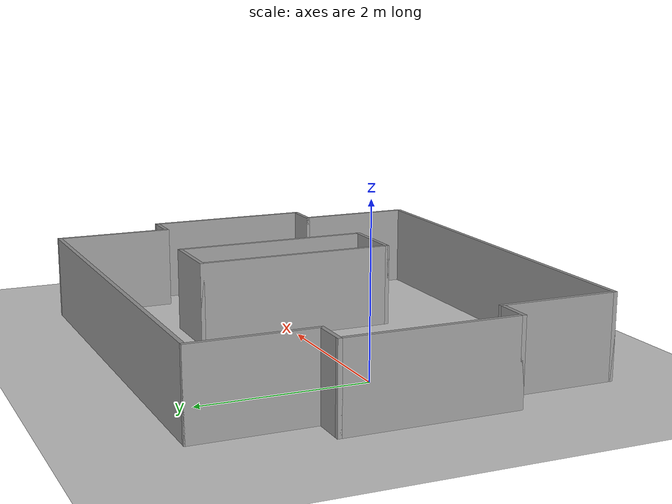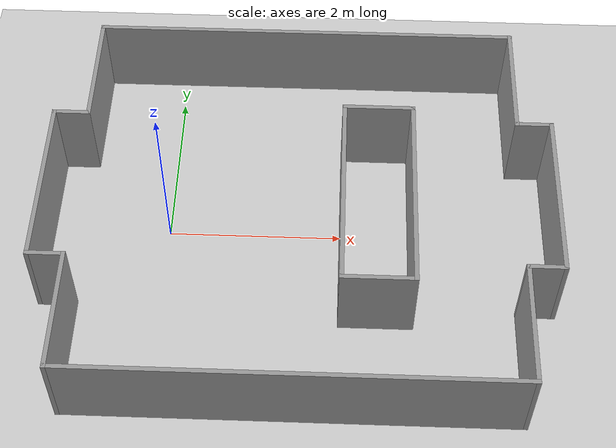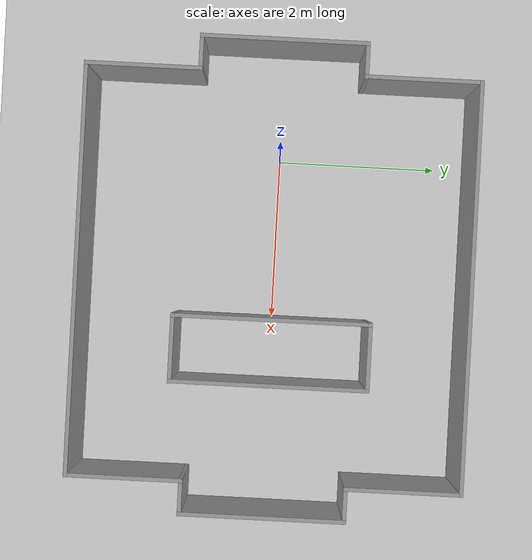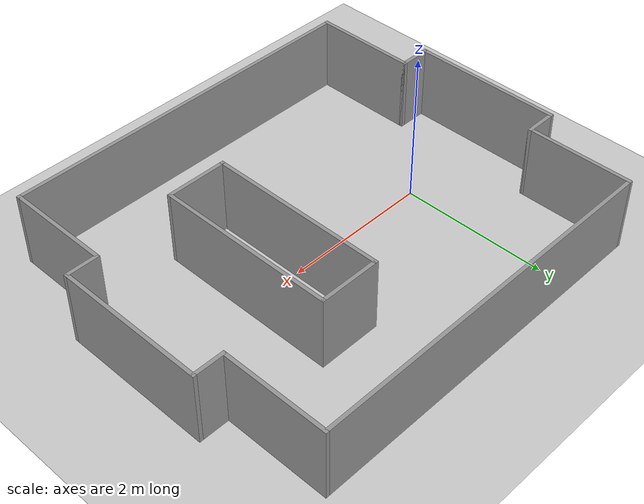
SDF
<sdf version="1.6">
 <world name="default">
  <light name="sun" type="directional">
   <pose>0 0 10 0 -0 0</pose>
   <diffuse>0.8 0.8 0.8 1</diffuse>
   <specular>0.2 0.2 0.2 1</specular>
   <attenuation>
    <range>1000</range>
    <constant>0.9</constant>
    <linear>0.01</linear>
    <quadratic>0.001</quadratic>
   </attenuation>
   <direction>-0.5 0.1 -0.9</direction>
  </light>
  <model name="ground_plane">
   <static>1</static>
   <link name="link">
    <collision name="collision">
     <geometry><plane><normal>0 0 1</normal><size>100 100</size></plane></geometry>
     <surface><friction><ode><mu>100</mu><mu2>50</mu2></ode></friction></surface>
    </collision>
    <visual name="visual">
     <cast_shadows>0</cast_shadows>
     <geometry><plane><normal>0 0 1</normal><size>100 100</size></plane></geometry>
     <material>
      <script><uri>file://media/materials/scripts/gazebo.material</uri><name>Gazebo/Grey</name></script>
     </material>
    </visual>
   </link>
  </model>
  <gravity>0 0 -9.8</gravity>
  <magnetic_field>6e-06 2.3e-05 -4.2e-05</magnetic_field>
  <atmosphere type="adiabatic"/>
  <physics name="default_physics" default="0" type="ode">
   <max_step_size>0.001</max_step_size>
   <real_time_factor>1</real_time_factor>
   <real_time_update_rate>1000</real_time_update_rate>
  </physics>
  <scene><ambient>0.4 0.4 0.4 1</ambient><background>0.7 0.7 0.7 1</background><shadows>1</shadows></scene>
  <spherical_coordinates>
   <surface_model>EARTH_WGS84</surface_model>
   <latitude_deg>0</latitude_deg>
   <longitude_deg>0</longitude_deg>
   <elevation>0</elevation>
   <heading_deg>0</heading_deg>
  </spherical_coordinates>
  <model name="rgarena2">
   <pose>1.51574 0.001618 0 0 0 -1.56927</pose>
   <link name="Wall_0">
    <collision name="Wall_0_Collision">
     <geometry><box><size>5.05 0.05 1</size></box></geometry>
     <pose>0 0 0.5 0 -0 0</pose>
    </collision>
    <visual name="Wall_0_Visual">
     <pose>0 0 0.5 0 -0 0</pose>
     <geometry><box><size>5.05 0.05 1</size></box></geometry>
     <material>
      <script><uri>file://media/materials/scripts/gazebo.material</uri><name>Gazebo/Grey</name></script>
      <ambient>1 1 1 1</ambient>
     </material>
     <meta><layer>0</layer></meta>
    </visual>
    <pose>-2.40022 0 0 0 -0 1.5708</pose>
   </link>
   <link name="Wall_14">
    <collision name="Wall_14_Collision">
     <geometry><box><size>1.45 0.05 1</size></box></geometry>
     <pose>0 0 0.5 0 -0 0</pose>
    </collision>
    <visual name="Wall_14_Visual">
     <pose>0 0 0.5 0 -0 0</pose>
     <geometry><box><size>1.45 0.05 1</size></box></geometry>
     <material>
      <script><uri>file://media/materials/scripts/gazebo.material</uri><name>Gazebo/Grey</name></script>
      <ambient>1 1 1 1</ambient>
     </material>
     <meta><layer>0</layer></meta>
    </visual>
    <pose>-1.70023 -2.5 0 0 -0 0</pose>
   </link>
   <link name="Wall_16">
    <collision name="Wall_16_Collision">
     <geometry><box><size>0.45 0.05 1</size></box></geometry>
     <pose>0 0 0.5 0 -0 0</pose>
    </collision>
    <visual name="Wall_16_Visual">
     <pose>0 0 0.5 0 -0 0</pose>
     <geometry><box><size>0.45 0.05 1</size></box></geometry>
     <material>
      <script><uri>file://media/materials/scripts/gazebo.material</uri><name>Gazebo/Grey</name></script>
      <ambient>1 1 1 1</ambient>
     </material>
     <meta><layer>0</layer></meta>
    </visual>
    <pose>-1.00022 -2.7 0 0 -0 -1.5708</pose>
   </link>
   <link name="Wall_18">
    <collision name="Wall_18_Collision">
     <geometry><box><size>2.065 0.05 1</size></box></geometry>
     <pose>0 0 0.5 0 -0 0</pose>
    </collision>
    <visual name="Wall_18_Visual">
     <pose>0 0 0.5 0 -0 0</pose>
     <geometry><box><size>2.065 0.05 1</size></box></geometry>
     <material>
      <script><uri>file://media/materials/scripts/gazebo.material</uri><name>Gazebo/Grey</name></script>
      <ambient>1 1 1 1</ambient>
     </material>
     <meta><layer>0</layer></meta>
    </visual>
    <pose>0.007275 -2.9 0 0 -0 0</pose>
   </link>
   <link name="Wall_19">
    <collision name="Wall_19_Collision">
     <geometry><box><size>0.45 0.05 1</size></box></geometry>
     <pose>0 0 0.5 0 -0 0</pose>
    </collision>
    <visual name="Wall_19_Visual">
     <pose>0 0 0.5 0 -0 0</pose>
     <geometry><box><size>0.45 0.05 1</size></box></geometry>
     <material>
      <script><uri>file://media/materials/scripts/gazebo.material</uri><name>Gazebo/Grey</name></script>
      <ambient>1 1 1 1</ambient>
     </material>
     <meta><layer>0</layer></meta>
    </visual>
    <pose>1.01477 -2.7 0 0 -0 1.5708</pose>
   </link>
   <link name="Wall_20">
    <collision name="Wall_20_Collision">
     <geometry><box><size>1.4359 0.05 1</size></box></geometry>
     <pose>0 0 0.5 0 -0 0</pose>
    </collision>
    <visual name="Wall_20_Visual">
     <pose>0 0 0.5 0 -0 0</pose>
     <geometry><box><size>1.4359 0.05 1</size></box></geometry>
     <material>
      <script><uri>file://media/materials/scripts/gazebo.material</uri><name>Gazebo/Grey</name></script>
      <ambient>1 1 1 1</ambient>
     </material>
     <meta><layer>0</layer></meta>
    </visual>
    <pose>1.70728 -2.5 0 0 -0 0</pose>
   </link>
   <link name="Wall_23">
    <collision name="Wall_23_Collision">
     <geometry><box><size>5.05 0.05 1</size></box></geometry>
     <pose>0 0 0.5 0 -0 0</pose>
    </collision>
    <visual name="Wall_23_Visual">
     <pose>0 0 0.5 0 -0 0</pose>
     <geometry><box><size>5.05 0.05 1</size></box></geometry>
     <material>
      <script><uri>file://media/materials/scripts/gazebo.material</uri><name>Gazebo/Grey</name></script>
      <ambient>1 1 1 1</ambient>
     </material>
     <meta><layer>0</layer></meta>
    </visual>
    <pose>2.39977 0 0 0 -0 1.5708</pose>
   </link>
   <link name="Wall_25">
    <collision name="Wall_25_Collision">
     <geometry><box><size>1.45 0.05 1</size></box></geometry>
     <pose>0 0 0.5 0 -0 0</pose>
    </collision>
    <visual name="Wall_25_Visual">
     <pose>0 0 0.5 0 -0 0</pose>
     <geometry><box><size>1.45 0.05 1</size></box></geometry>
     <material>
      <script><uri>file://media/materials/scripts/gazebo.material</uri><name>Gazebo/Grey</name></script>
      <ambient>1 1 1 1</ambient>
     </material>
     <meta><layer>0</layer></meta>
    </visual>
    <pose>1.69978 2.5 0 0 -0 3.14159</pose>
   </link>
   <link name="Wall_28">
    <collision name="Wall_28_Collision">
     <geometry><box><size>0.45 0.05 1</size></box></geometry>
     <pose>0 0 0.5 0 -0 0</pose>
    </collision>
    <visual name="Wall_28_Visual">
     <pose>0 0 0.5 0 -0 0</pose>
     <geometry><box><size>0.45 0.05 1</size></box></geometry>
     <material>
      <script><uri>file://media/materials/scripts/gazebo.material</uri><name>Gazebo/Grey</name></script>
      <ambient>1 1 1 1</ambient>
     </material>
     <meta><layer>0</layer></meta>
    </visual>
    <pose>0.999775 2.7 0 0 -0 1.5708</pose>
   </link>
   <link name="Wall_29">
    <collision name="Wall_29_Collision">
     <geometry><box><size>2.05 0.05 1</size></box></geometry>
     <pose>0 0 0.5 0 -0 0</pose>
    </collision>
    <visual name="Wall_29_Visual">
     <pose>0 0 0.5 0 -0 0</pose>
     <geometry><box><size>2.05 0.05 1</size></box></geometry>
     <material>
      <script><uri>file://media/materials/scripts/gazebo.material</uri><name>Gazebo/Grey</name></script>
      <ambient>1 1 1 1</ambient>
     </material>
     <meta><layer>0</layer></meta>
    </visual>
    <pose>-0.000225 2.9 0 0 -0 3.14159</pose>
   </link>
   <link name="Wall_30">
    <collision name="Wall_30_Collision">
     <geometry><box><size>0.45 0.05 1</size></box></geometry>
     <pose>0 0 0.5 0 -0 0</pose>
    </collision>
    <visual name="Wall_30_Visual">
     <pose>0 0 0.5 0 -0 0</pose>
     <geometry><box><size>0.45 0.05 1</size></box></geometry>
     <material>
      <script><uri>file://media/materials/scripts/gazebo.material</uri><name>Gazebo/Grey</name></script>
      <ambient>1 1 1 1</ambient>
     </material>
     <meta><layer>0</layer></meta>
    </visual>
    <pose>-1.00022 2.7 0 0 -0 -1.5708</pose>
   </link>
   <link name="Wall_31">
    <collision name="Wall_31_Collision">
     <geometry><box><size>1.45 0.05 1</size></box></geometry>
     <pose>0 0 0.5 0 -0 0</pose>
    </collision>
    <visual name="Wall_31_Visual">
     <pose>0 0 0.5 0 -0 0</pose>
     <geometry><box><size>1.45 0.05 1</size></box></geometry>
     <material>
      <script><uri>file://media/materials/scripts/gazebo.material</uri><name>Gazebo/Grey</name></script>
      <ambient>1 1 1 1</ambient>
     </material>
     <meta><layer>0</layer></meta>
    </visual>
    <pose>-1.70023 2.5 0 0 -0 3.14159</pose>
   </link>
   <link name="Wall_36">
    <collision name="Wall_36_Collision">
     <geometry><box><size>0.85 0.05 1</size></box></geometry>
     <pose>0 0 0.5 0 -0 0</pose>
    </collision>
    <visual name="Wall_36_Visual">
     <pose>0 0 0.5 0 -0 0</pose>
     <geometry><box><size>0.85 0.05 1</size></box></geometry>
     <material>
      <script><uri>file://media/materials/scripts/gazebo.material</uri><name>Gazebo/Grey</name></script>
      <ambient>1 1 1 1</ambient>
     </material>
     <meta><layer>0</layer></meta>
    </visual>
    <pose>-1.20023 0.9 0 0 -0 -1.5708</pose>
   </link>
   <link name="Wall_37">
    <collision name="Wall_37_Collision">
     <geometry><box><size>2.44917 0.05 1</size></box></geometry>
     <pose>0 0 0.5 0 -0 0</pose>
    </collision>
    <visual name="Wall_37_Visual">
     <pose>0 0 0.5 0 -0 0</pose>
     <geometry><box><size>2.44917 0.05 1</size></box></geometry>
     <material>
      <script><uri>file://media/materials/scripts/gazebo.material</uri><name>Gazebo/Grey</name></script>
      <ambient>1 1 1 1</ambient>
     </material>
     <meta><layer>0</layer></meta>
    </visual>
    <pose>-0.000225 0.5 0 0 -0 0</pose>
   </link>
   <link name="Wall_38">
    <collision name="Wall_38_Collision">
     <geometry><box><size>0.85 0.05 1</size></box></geometry>
     <pose>0 0 0.5 0 -0 0</pose>
    </collision>
    <visual name="Wall_38_Visual">
     <pose>0 0 0.5 0 -0 0</pose>
     <geometry><box><size>0.85 0.05 1</size></box></geometry>
     <material>
      <script><uri>file://media/materials/scripts/gazebo.material</uri><name>Gazebo/Grey</name></script>
      <ambient>1 1 1 1</ambient>
     </material>
     <meta><layer>0</layer></meta>
    </visual>
    <pose>1.19978 0.9 0 0 -0 1.5708</pose>
   </link>
   <link name="Wall_39">
    <collision name="Wall_39_Collision">
     <geometry><box><size>2.45 0.05 1</size></box></geometry>
     <pose>0 0 0.5 0 -0 0</pose>
    </collision>
    <visual name="Wall_39_Visual">
     <pose>0 0 0.5 0 -0 0</pose>
     <geometry><box><size>2.45 0.05 1</size></box></geometry>
     <material>
      <script><uri>file://media/materials/scripts/gazebo.material</uri><name>Gazebo/Grey</name></script>
      <ambient>1 1 1 1</ambient>
     </material>
     <meta><layer>0</layer></meta>
    </visual>
    <pose>-0.000225 1.3 0 0 -0 3.14159</pose>
   </link>
   <static>1</static>
  </model>
 </world>
</sdf>
